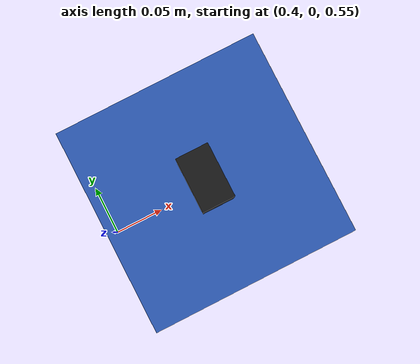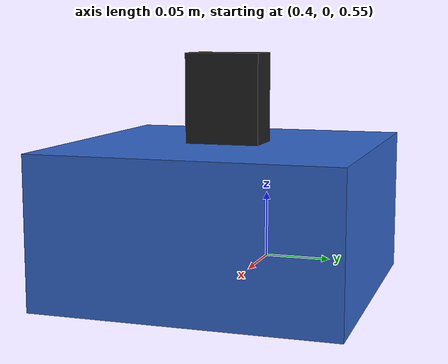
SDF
<?xml version="1.0"?>
<sdf version="1.7">
  <model name="workpiece_box">
    <static>false</static>
    <!-- spawn a bit above the floor; adjust as you like -->
    <pose>0.5 0 0.6 0 0 0</pose>

    <link name="link">
      <!-- Simple inertia; close enough for grasp testing -->
      <inertial>
        <mass>1.2</mass>
        <inertia>
          <!-- approx for 0.20x0.20x0.10 box (+ small notch) -->
          <ixx>0.0048</ixx>
          <iyy>0.0048</iyy>
          <izz>0.0072</izz>
          <ixy>0</ixy><ixz>0</ixz><iyz>0</iyz>
        </inertia>
      </inertial>

      <!-- MAIN BOX (200x200x100 mm) -->
      <collision name="box_collision">
        <!-- centered at the link frame -->
        <pose>0 0 0 0 0 0</pose>
        <geometry>
          <box><size>0.20 0.20 0.10</size></box>
        </geometry>
        <surface>
          <friction>
            <ode>
              <mu>1.0</mu>
              <mu2>1.0</mu2>
            </ode>
          </friction>
          <contact>
            <ode><kp>1e5</kp><kd>1.0</kd></ode>
          </contact>
        </surface>
      </collision>

      <visual name="box_visual">
        <pose>0 0 0 0 0 0</pose>
        <geometry>
          <box><size>0.20 0.20 0.10</size></box>
        </geometry>
        <material>
          <ambient>0.2 0.4 0.8 1</ambient>
          <diffuse>0.2 0.4 0.8 1</diffuse>
        </material>
      </visual>

      <!-- TOP NOTCH / PEG (30x50x60 mm) -->
      <collision name="notch_collision">
        <pose>0 0 0.08 0 0 0</pose>
        <geometry>
          <box><size>0.03 0.05 0.06</size></box>
        </geometry>
        <surface>
          <friction>
            <ode>
              <!-- Make the notch “grippy” for the fingers -->
              <mu>2.0</mu>
              <mu2>2.0</mu2>
            </ode>
          </friction>
          <contact>
            <ode><kp>1e5</kp><kd>1.0</kd></ode>
          </contact>
        </surface>
      </collision>

      <visual name="notch_visual">
        <pose>0 0 0.08 0 0 0</pose>
        <geometry>
          <box><size>0.03 0.05 0.06</size></box>
        </geometry>
        <material>
          <ambient>0.1 0.1 0.1 1</ambient>
          <diffuse>0.12 0.12 0.12 1</diffuse>
        </material>
      </visual>
    </link>
  </model>
</sdf>
